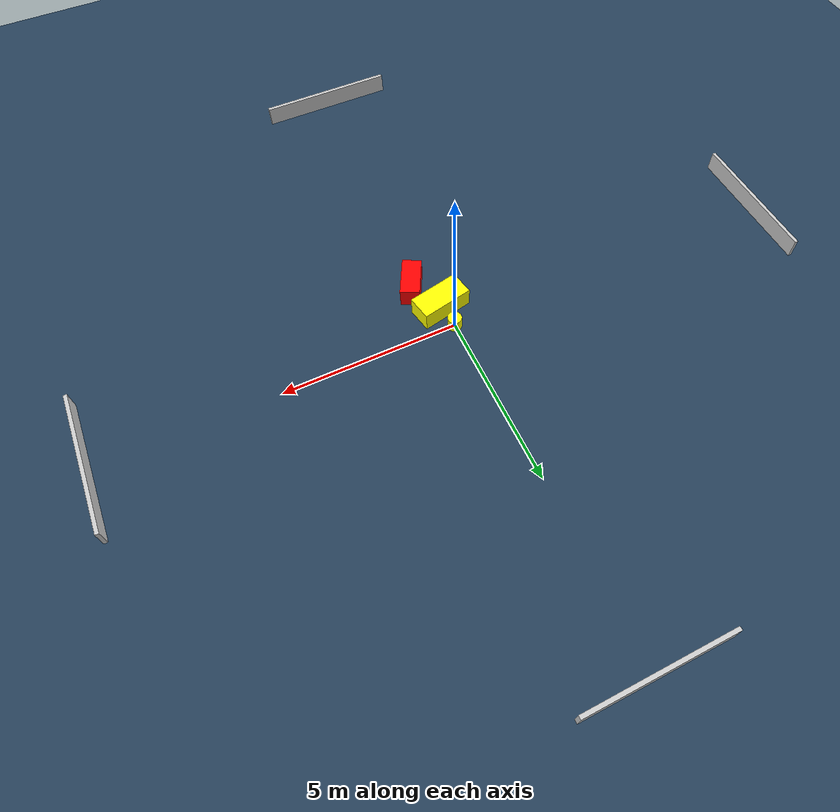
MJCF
<?xml version="1.0" ?>
<mujoco model="generated_environment">
  <option timestep="0.01" integrator="RK4" cone="elliptic"/>
  <default>
    <geom density="1"/>
  </default>
  <asset>
    <texture builtin="gradient" height="3072" name="skybox" rgb1="0.3 0.5 0.7" rgb2="0 0 0" type="skybox" width="512"/>
    <texture builtin="checker" height="300" name="groundplane" rgb1="0.2 0.3 0.4" rgb2="0.1 0.2 0.3" type="2d" width="300"/>
    <material name="groundplane" reflectance="0.2" texrepeat="5 5" texture="groundplane"/>
  </asset>
  <worldbody>
    <light dir="0 0 -1" directional="true" pos="0 0 1.5"/>
    <geom condim="3" friction="0.5 0.005 0.001" material="groundplane" name="floor" pos="0 0 0" size="0 0 0.05" type="plane"/>
    <body name="walls">
      <geom name="wall_1" condim="4" pos="-10.0 0.0 0.3" rgba="0.800000011920929 0.800000011920929 0.800000011920929 1.0" size="0.05 2.0 0.3" type="box"/>
      <geom name="wall_2" condim="4" pos="10.0 0.0 0.3" rgba="0.800000011920929 0.800000011920929 0.800000011920929 1.0" size="0.05 2.0 0.3" type="box"/>
      <geom name="wall_3" condim="4" pos="0.0 -10.0 0.3" rgba="0.800000011920929 0.800000011920929 0.800000011920929 1.0" size="2.0 0.05 0.3" type="box"/>
      <geom name="wall_4" condim="4" pos="0.0 10.0 0.3" rgba="0.800000011920929 0.800000011920929 0.800000011920929 1.0" size="2.0 0.05 0.3" type="box"/>
    </body>
    <body name="robot">
      <joint name="joint_x" type="slide" pos="0 0 0" axis="1 0 0"/>
      <joint name="joint_y" type="slide" pos="0 0 0" axis="0 1 0"/>
      <geom name="robot" type="cylinder" pos="0.0 0.0 0.2" size="0.2 0.2 0.0" mass="5.0" friction="1.0 0.005 0.0001" condim="4" rgba="1.0 1.0 0.0 1.0"/>
    </body>
    <body name="obstacle_1_movable">
      <geom name="obstacle_1_movable" condim="4" pos="0.09029953887559448 -0.7236707302003343 0.3" euler="0 0 191.67284565873516" friction="0.0 0.005 0.001" rgba="1.0 1.0 0.0 1.0" size="0.7381740486036945 0.3555835933642174 0.3" type="box" mass="0.1"/>
      <joint type="free"/>
    </body>
    <body name="obstacle_2_static">
      <geom name="obstacle_2_static" condim="4" pos="0.5596537510109364 -1.6813984518121825 0.3" euler="0 0 153.16651313997772" friction="0.0 0.005 0.001" rgba="1.0 0.0 0.0 1.0" size="0.2764839876882987 0.5610603839969446 0.3" type="box"/>
    </body>
  </worldbody>
  <actuator>
    <motor name="actuator_x" joint="joint_x" gear="1" ctrlrange="-1 1"/>
    <motor name="actuator_y" joint="joint_y" gear="1" ctrlrange="-1 1"/>
  </actuator>
</mujoco>
